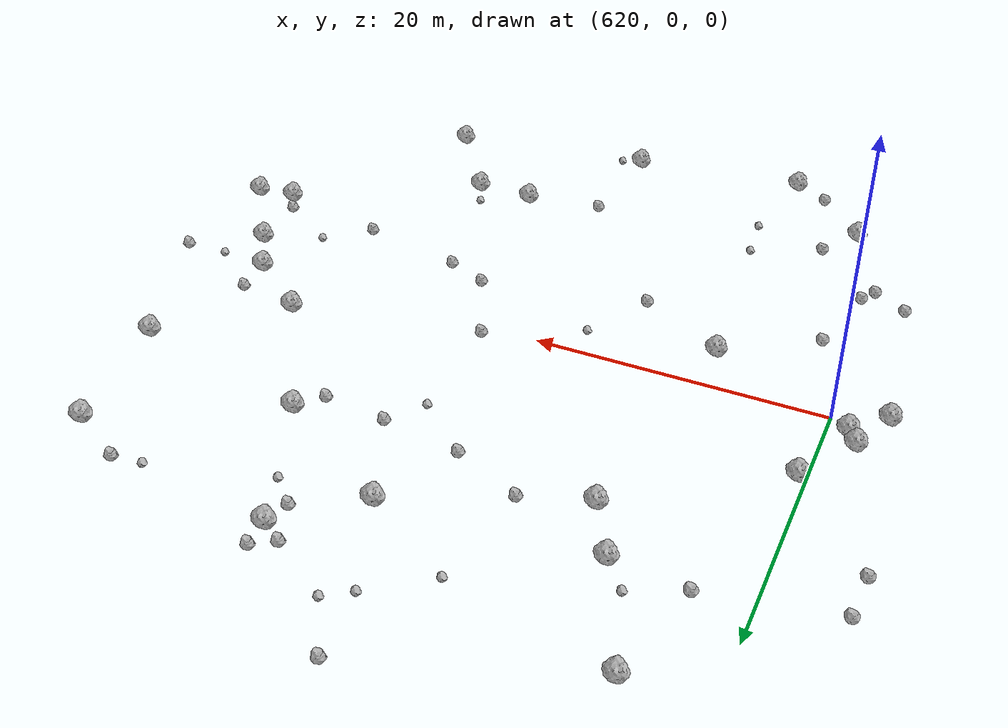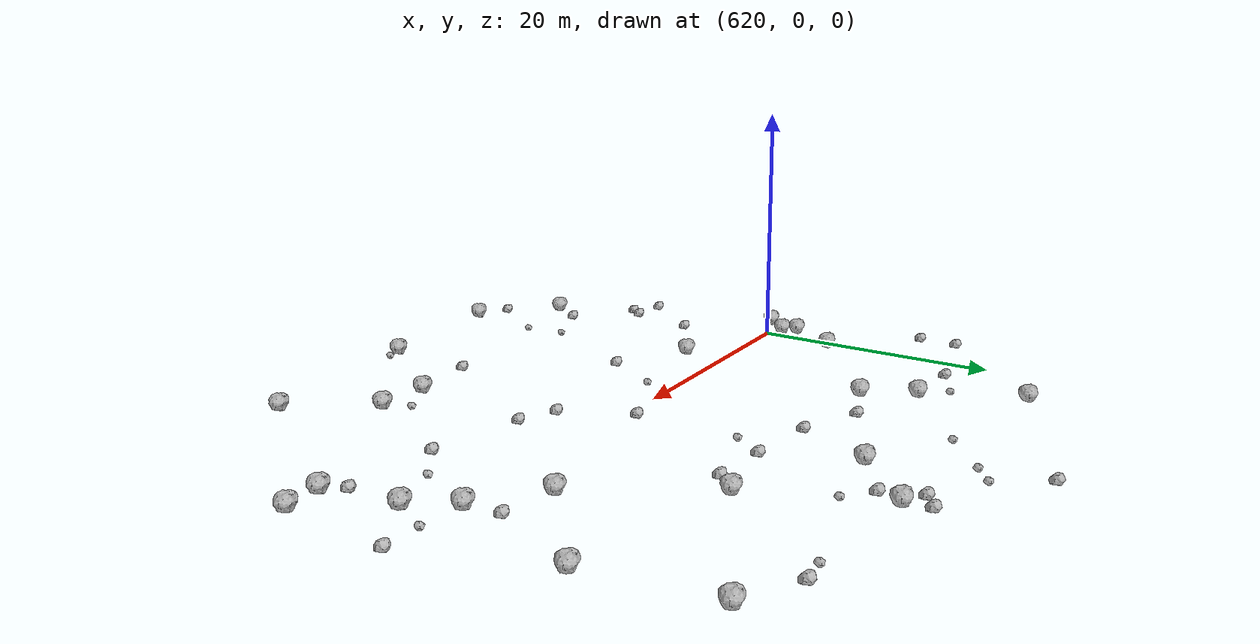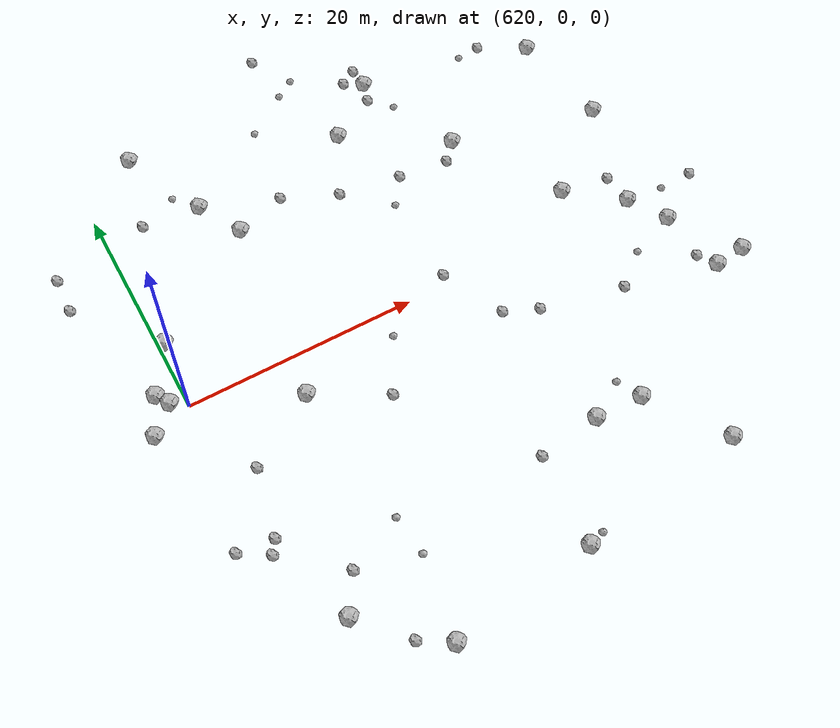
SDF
<sdf version="1.6">
 <world name="default">
  <include><uri>model://sun</uri></include>
  <model name="rock1_16_3">
   <include><uri>model://rock1</uri><pose>628.6440251954729 17.01990250346377 0.5 0 0 0</pose></include>
  </model>
  <model name="rock1_16_4">
   <include><uri>model://rock1</uri><pose>667.2662072613559 -9.140584218152796 0.5 0 0 0</pose></include>
  </model>
  <model name="rock1_16_5">
   <include><uri>model://rock1</uri><pose>661.557598497794 -0.24801234151945906 0.5 0 0 0</pose></include>
  </model>
  <model name="rock1_16_6">
   <include><uri>model://rock1</uri><pose>664.3950472015729 9.562002825994341 0.5 0 0 0</pose></include>
  </model>
  <model name="rock1_16_7">
   <include><uri>model://rock1</uri><pose>630.7511744497925 13.088821492265666 0.5 0 0 0</pose></include>
  </model>
  <model name="rock1_16_8">
   <include><uri>model://rock1</uri><pose>618.0470545594136 1.9976287572479663 0.5 0 0 0</pose></include>
  </model>
  <model name="rock1_16_9">
   <include><uri>model://rock1</uri><pose>651.8323005667751 -16.700231357113495 0.5 0 0 0</pose></include>
  </model>
  <model name="rock1_16_10">
   <include><uri>model://rock1</uri><pose>647.5798699702166 22.278047002707837 0.5 0 0 0</pose></include>
  </model>
  <model name="rock1_16_11">
   <include><uri>model://rock1</uri><pose>663.0465754318415 18.791235397327412 0.5 0 0 0</pose></include>
  </model>
  <model name="rock1_16_12">
   <include><uri>model://rock1</uri><pose>620.6065993209493 6.07209676802087 0.5 0 0 0</pose></include>
  </model>
  <model name="rock1_16_13">
   <include><uri>model://rock1</uri><pose>642.7811183368077 18.088524815422183 0.5 0 0 0</pose></include>
  </model>
  <model name="rock1_16_14">
   <include><uri>model://rock1</uri><pose>629.0698999964371 -26.680934309988903 0.5 0 0 0</pose></include>
  </model>
  <model name="rock1_16_15">
   <include><uri>model://rock1</uri><pose>664.49439569839 -9.436599855376077 0.5 0 0 0</pose></include>
  </model>
  <model name="rock1_16_16">
   <include><uri>model://rock1</uri><pose>616.6168187597461 -1.2654433430661918 0.5 0 0 0</pose></include>
  </model>
  <model name="rock1_16_17">
   <include><uri>model://rock1</uri><pose>663.5003272060922 -3.5271468211296195 0.5 0 0 0</pose></include>
  </model>
  <model name="rock1_16_18">
   <include><uri>model://rock1</uri><pose>623.1725993460585 -21.319929871307664 0.5 0 0 0</pose></include>
  </model>
  <model name="rock1_16_19">
   <include><uri>model://rock1</uri><pose>657.0617277500586 3.273763340018178 0.5 0 0 0</pose></include>
  </model>
  <model name="rock1_16_20">
   <include><uri>model://rock1</uri><pose>647.6735510320881 -16.55453195135845 0.5 0 0 0</pose></include>
  </model>
  <model name="rock1_16_21">
   <include><uri>model://rock1</uri><pose>656.0868320153469 -23.06772491318635 0.5 0 0 0</pose></include>
  </model>
  <model name="rock1_16_22">
   <include><uri>model://rock1</uri><pose>618.7808266001845 0.8530930880906276 0.5 0 0 0</pose></include>
  </model>
  <model name="rock1_16_23">
   <include><uri>model://rock1</uri><pose>641.5094142664647 -25.147791137073874 0.5 0 0 0</pose></include>
  </model>
  <model name="rock1_16_24">
   <include><uri>model://rock1</uri><pose>651.4040587927757 12.647572278688614 0.5 0 0 0</pose></include>
  </model>
  <model name="rock1_16_25">
   <include><uri>model://rock1</uri><pose>628.6453581671877 -3.659420898288566 0.5 0 0 0</pose></include>
  </model>
  <model name="rock1_16_26">
   <include><uri>model://rock1</uri><pose>625.2789464702067 24.5726746589094 0.5 0 0 0</pose></include>
  </model>
  <model name="rock2_16_0">
   <include><uri>model://rock2</uri><pose>639.6894177240463 29.749674733042383 0.3 0 0 0</pose></include>
  </model>
  <model name="rock2_16_1">
   <include><uri>model://rock2</uri><pose>646.19219023031 -4.604446887087054 0.3 0 0 0</pose></include>
  </model>
  <model name="rock2_16_2">
   <include><uri>model://rock2</uri><pose>620.358144548864 -14.36094536445646 0.3 0 0 0</pose></include>
  </model>
  <model name="rock2_16_3">
   <include><uri>model://rock2</uri><pose>643.6986509641996 0.8610700304323728 0.3 0 0 0</pose></include>
  </model>
  <model name="rock2_16_4">
   <include><uri>model://rock2</uri><pose>645.966274104705 23.3521171268537 0.3 0 0 0</pose></include>
  </model>
  <model name="rock2_16_5">
   <include><uri>model://rock2</uri><pose>663.4974790779037 -7.8169538163188115 0.3 0 0 0</pose></include>
  </model>
  <model name="rock2_16_6">
   <include><uri>model://rock2</uri><pose>621.0936140463276 -13.267471744082695 0.3 0 0 0</pose></include>
  </model>
  <model name="rock2_16_7">
   <include><uri>model://rock2</uri><pose>615.0936492196169 15.975232559788104 0.3 0 0 0</pose></include>
  </model>
  <model name="rock2_16_8">
   <include><uri>model://rock2</uri><pose>645.4298623818116 11.61284136496316 0.3 0 0 0</pose></include>
  </model>
  <model name="rock2_16_9">
   <include><uri>model://rock2</uri><pose>646.9895290267478 20.55547603057478 0.3 0 0 0</pose></include>
  </model>
  <model name="rock2_16_10">
   <include><uri>model://rock2</uri><pose>642.1576012842762 -17.256575772468967 0.3 0 0 0</pose></include>
  </model>
  <model name="rock2_16_11">
   <include><uri>model://rock2</uri><pose>639.9204160892011 12.467350188971217 0.3 0 0 0</pose></include>
  </model>
  <model name="rock2_16_12">
   <include><uri>model://rock2</uri><pose>614.9444035920949 12.732345549620554 0.3 0 0 0</pose></include>
  </model>
  <model name="rock2_16_13">
   <include><uri>model://rock2</uri><pose>622.3985844923798 -7.438024887174016 0.3 0 0 0</pose></include>
  </model>
  <model name="rock2_16_14">
   <include><uri>model://rock2</uri><pose>647.4256142162376 24.244898762052884 0.3 0 0 0</pose></include>
  </model>
  <model name="rock2_16_15">
   <include><uri>model://rock2</uri><pose>656.3848048483095 -7.455990670896433 0.3 0 0 0</pose></include>
  </model>
  <model name="rock2_16_16">
   <include><uri>model://rock2</uri><pose>634.6124100822581 -6.954808794539083 0.3 0 0 0</pose></include>
  </model>
  <model name="rock2_16_17">
   <include><uri>model://rock2</uri><pose>626.5439195450244 -25.102997818251104 0.3 0 0 0</pose></include>
  </model>
  <model name="rock2_16_18">
   <include><uri>model://rock2</uri><pose>649.8694372770219 11.072521319828006 0.3 0 0 0</pose></include>
  </model>
  <model name="rock2_16_19">
   <include><uri>model://rock2</uri><pose>649.0823743182852 -5.863180397733213 0.3 0 0 0</pose></include>
  </model>
  <model name="rock2_16_20">
   <include><uri>model://rock2</uri><pose>623.512807058379 17.602288089164816 0.3 0 0 0</pose></include>
  </model>
  <model name="rock2_16_21">
   <include><uri>model://rock2</uri><pose>625.0605291315851 -18.284501847410255 0.3 0 0 0</pose></include>
  </model>
  <model name="rock2_16_22">
   <include><uri>model://rock2</uri><pose>635.1885230224494 14.600127891570551 0.3 0 0 0</pose></include>
  </model>
  <model name="rock2_16_23">
   <include><uri>model://rock2</uri><pose>667.927821142774 -0.43958513567968893 0.3 0 0 0</pose></include>
  </model>
  <model name="rock2_16_24">
   <include><uri>model://rock2</uri><pose>661.2991955029436 2.6025481013557012 0.3 0 0 0</pose></include>
  </model>
  <model name="rock2_16_25">
   <include><uri>model://rock2</uri><pose>618.0146680868377 -12.914931471312158 0.3 0 0 0</pose></include>
  </model>
  <model name="rock2_16_26">
   <include><uri>model://rock2</uri><pose>658.989835865679 21.1820229647267 0.3 0 0 0</pose></include>
  </model>
  <model name="rock3_16_0">
   <include><uri>model://rock3</uri><pose>641.8102276264701 25.997845093217542 0.2 0 0 0</pose></include>
  </model>
  <model name="rock3_16_1">
   <include><uri>model://rock3</uri><pose>640.1195395207055 24.865102695249462 0.2 0 0 0</pose></include>
  </model>
  <model name="rock3_16_2">
   <include><uri>model://rock3</uri><pose>648.7241587876767 18.739105165528017 0.2 0 0 0</pose></include>
  </model>
  <model name="rock3_16_3">
   <include><uri>model://rock3</uri><pose>650.8219586244592 -14.629392067968858 0.2 0 0 0</pose></include>
  </model>
  <model name="rock3_16_4">
   <include><uri>model://rock3</uri><pose>629.834218046728 -16.204002155639408 0.2 0 0 0</pose></include>
  </model>
  <model name="rock3_16_5">
   <include><uri>model://rock3</uri><pose>636.2960959371763 22.05951349346831 0.2 0 0 0</pose></include>
  </model>
  <model name="rock3_16_6">
   <include><uri>model://rock3</uri><pose>656.8651583978512 20.919588076863 0.2 0 0 0</pose></include>
  </model>
  <model name="rock3_16_7">
   <include><uri>model://rock3</uri><pose>630.1955417689935 -19.68278833599002 0.2 0 0 0</pose></include>
  </model>
  <model name="rock3_16_8">
   <include><uri>model://rock3</uri><pose>659.315911211549 -5.102029609263791 0.2 0 0 0</pose></include>
  </model>
  <model name="rock3_16_9">
   <include><uri>model://rock3</uri><pose>643.6290036484172 9.092360451575487 0.2 0 0 0</pose></include>
  </model>
  <model name="rock3_16_10">
   <include><uri>model://rock3</uri><pose>637.2074541935506 -2.2879070372489245 0.2 0 0 0</pose></include>
  </model>
  <model name="rock3_16_11">
   <include><uri>model://rock3</uri><pose>626.9228134770892 19.04424490880296 0.2 0 0 0</pose></include>
  </model>
  <model name="rock3_16_12">
   <include><uri>model://rock3</uri><pose>642.8626469077797 -24.737436538980038 0.2 0 0 0</pose></include>
  </model>
  <model name="rock3_16_13">
   <include><uri>model://rock3</uri><pose>664.89174667805 -0.563042647372491 0.2 0 0 0</pose></include>
  </model>
 </world>
</sdf>
